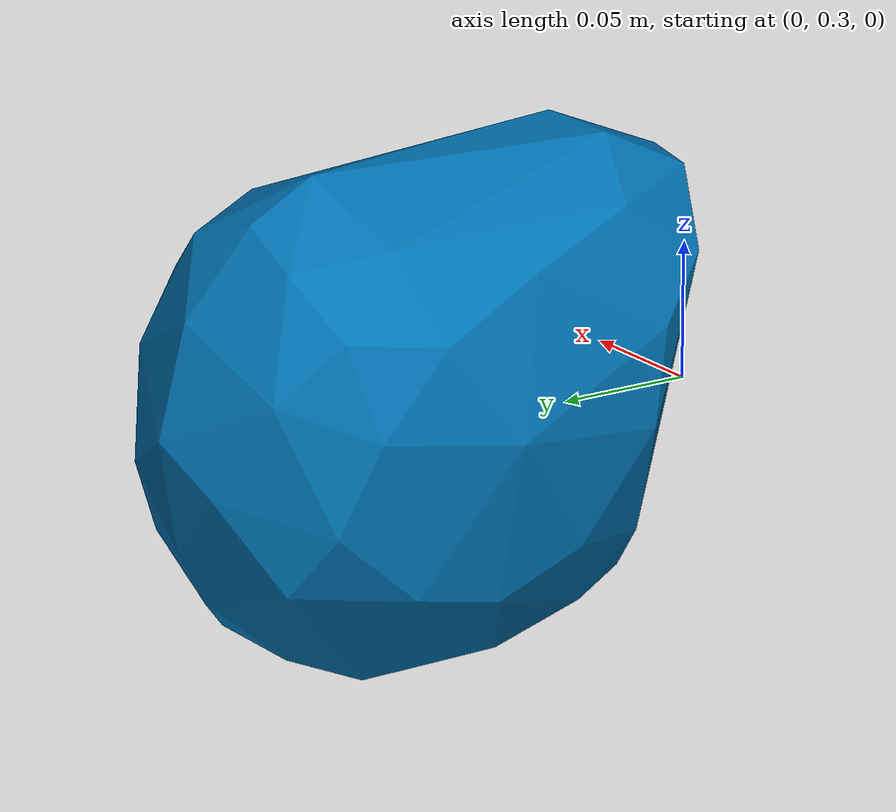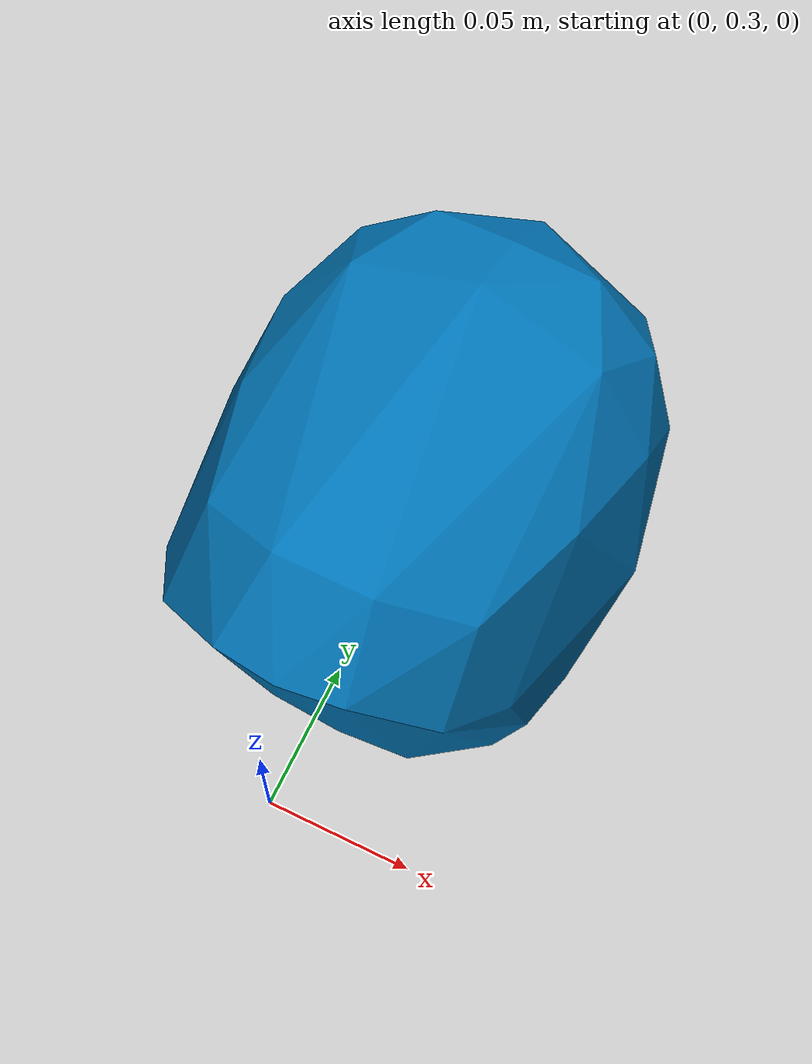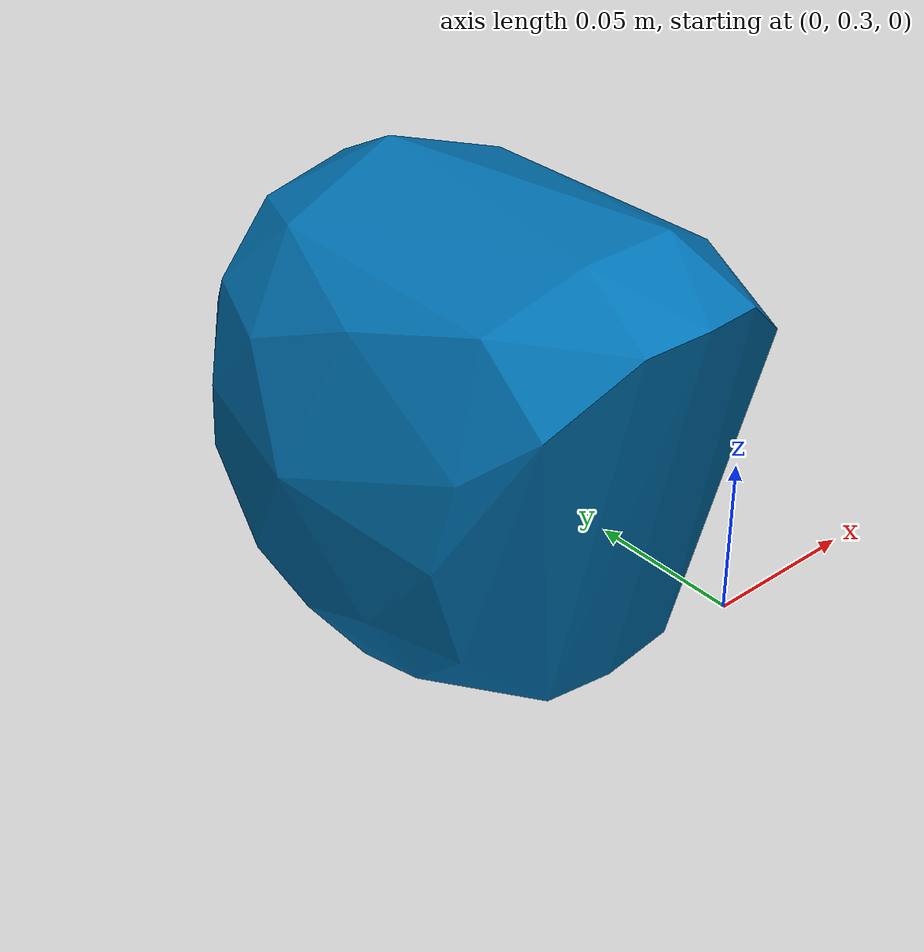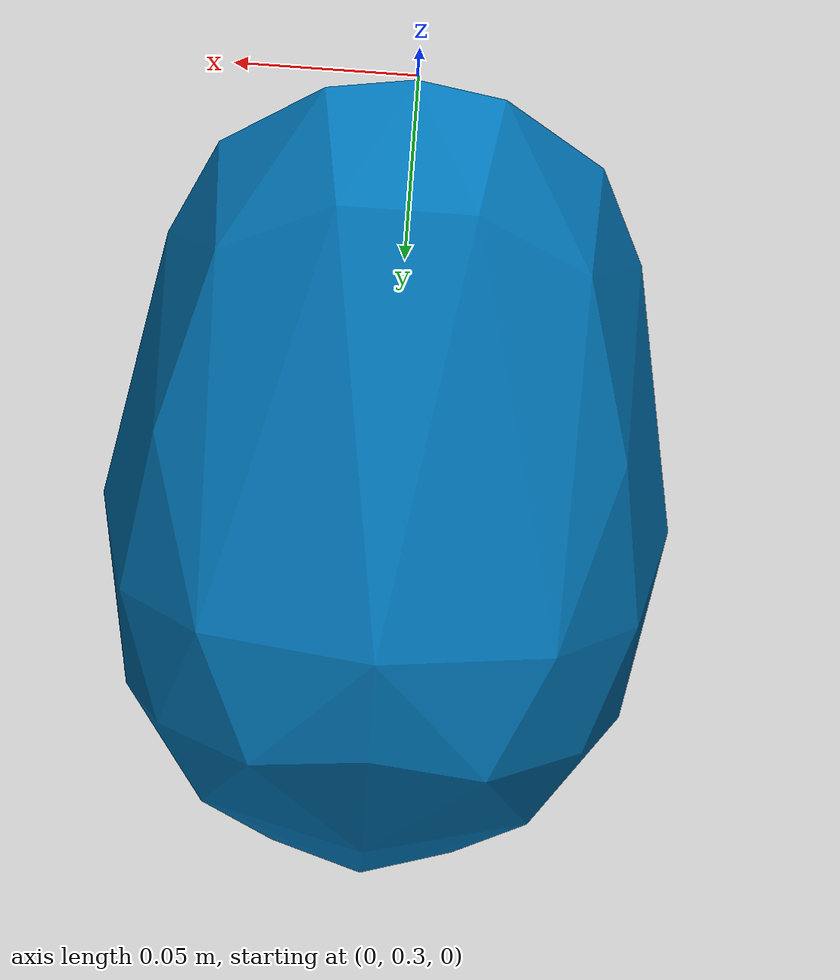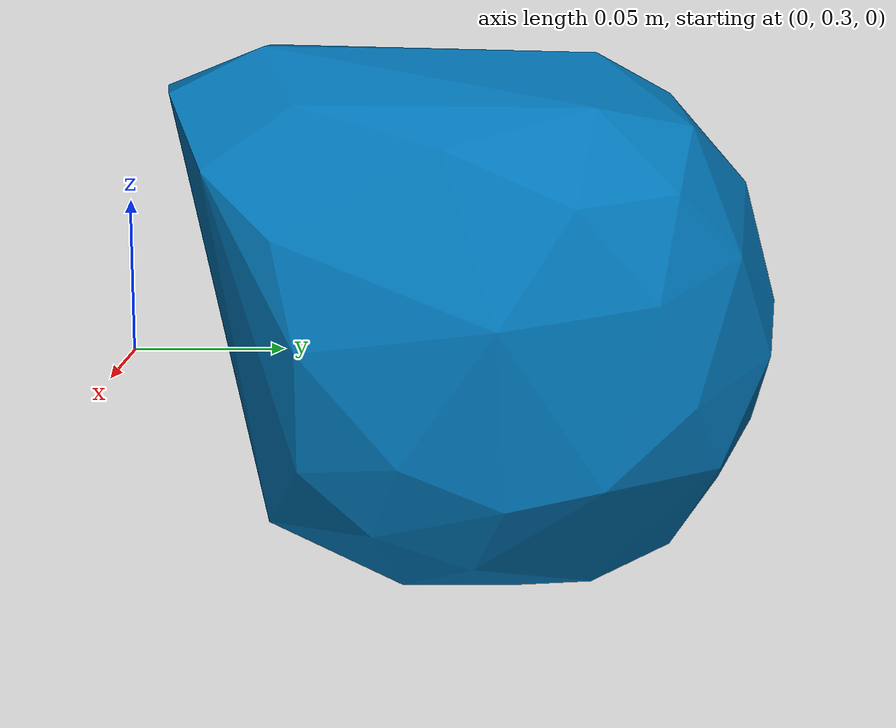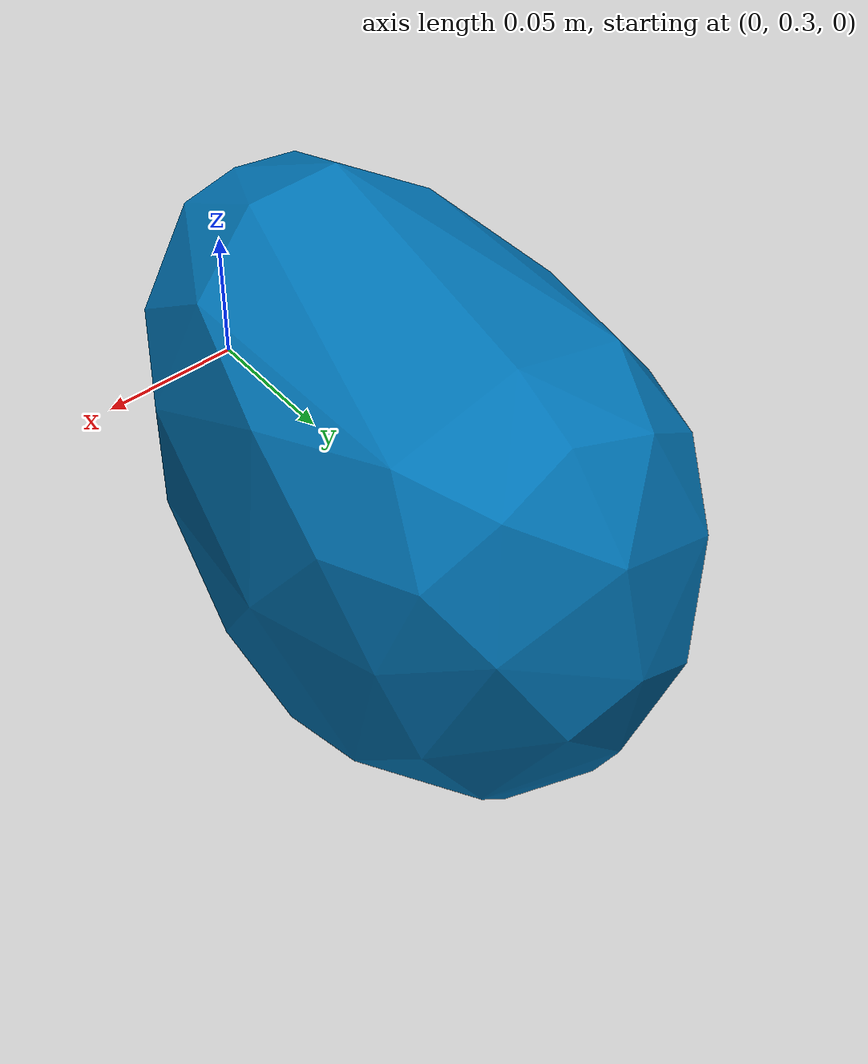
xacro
<?xml version="1.0" ?>
<robot name="galbot_one_golf_head" xmlns:xacro="http://www.ros.org/wiki/xacro">
    <xacro:property name="PI" value="3.141592653589793"/>
    <xacro:arg name="standalone" default="true"/>

    <xacro:macro name="galbot_one_golf_head" params="parent_link">
        <link name="torso_head_mount_link"/>
        <joint name="torso_head_mount_joint" type="fixed">
            <origin rpy="-1.5707963267948966 -1.5707963267948966 0" xyz="0 0.37711 0"/>
            <parent link="${parent_link}"/>
            <child link="torso_head_mount_link"/>
            <axis/>
        </joint>

        <joint name="head_joint" type="fixed">
            <parent link="torso_head_mount_link"/>
            <child link="head_base_link"/>
        </joint>

        <link name="head_base_link">
            <inertial>
                <origin xyz="-0.00019 0.00012 -0.0832"/>
                <mass value="0.39"/>
                <inertia ixx="0.00352162" ixy="1.6e-07" ixz="6.77e-06" iyy="0.00343251" iyz="2.91e-06"
                         izz="0.00044115"/>
            </inertial>
        </link>
        <link name="head_link1">
            <inertial>
                <origin xyz="1e-05 0.00189 -0.04337"/>
                <mass value="1.5695"/>
                <inertia ixx="0.0069002956" ixy="1.52205e-06" ixz="3.13295e-06" iyy="0.0068330036" iyz="1.009318e-05"
                         izz="0.0011696764"/>
            </inertial>
        </link>

        <joint name="head_joint1" type="revolute">
            <parent link="head_base_link"/>
            <child link="head_link1"/>
            <axis xyz="0 0 1"/>
            <limit effort="4" lower="-1.5208" upper="1.5208" velocity="1.5"/>
        </joint>

        <link name="head_link2">
            <inertial>
                <origin xyz="0.03563 -0.03998 0.00678"/>
                <mass value="0.81"/>
                <inertia ixx="0.00399161" ixy="0.00129825" ixz="3.92e-06" iyy="0.00372602" iyz="7.75e-06"
                         izz="0.00553062"/>
            </inertial>
            <visual>
                <origin xyz="0 0 0" rpy="0 0 0"/>
                <geometry>
                    <mesh filename="package://galbot_one_golf_description/meshes/visual/head/head_link2.glb"/>
                </geometry>
            </visual>
            <collision>
                <origin xyz="0 0 0" rpy="0 0 0"/>
                <geometry>
                    <mesh filename="package://galbot_one_golf_description/meshes/collision/head/head_link2_collision_01.stl"/>
                </geometry>
            </collision>
        </link>

        <joint name="head_joint2" type="revolute">
            <origin rpy="-1.5707963267948966 0 0"/>
            <parent link="head_link1"/>
            <child link="head_link2"/>
            <axis xyz="0 0 1"/>
            <limit effort="4" lower="-0.2143461" upper="0.4935988" velocity="1.5"/>
        </joint>

        <link name="head_end_effector_mount_link"/>
        <joint name="head_end_effector_mount_joint" type="fixed">
            <parent link="head_link2"/>
            <child link="head_end_effector_mount_link"/>
            <axis/>
        </joint>
    </xacro:macro>

    <xacro:if value="$(arg standalone)">
        <link name="torso_base_link"/>
        <xacro:galbot_one_golf_head parent_link="torso_base_link"/>
    </xacro:if>
</robot>
